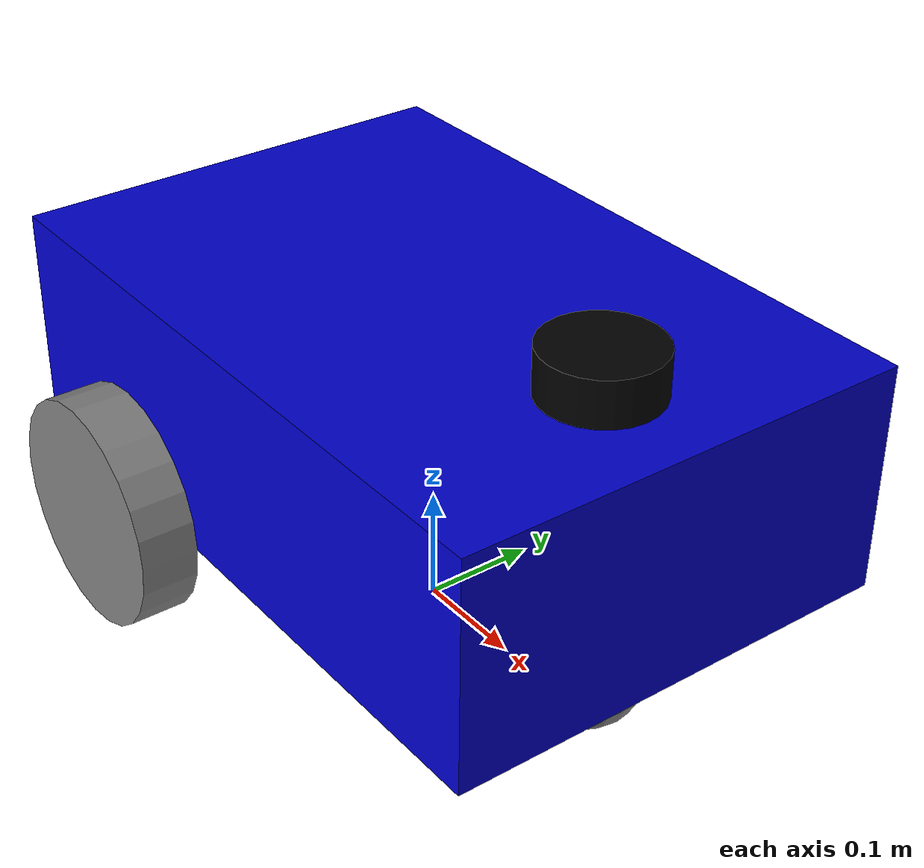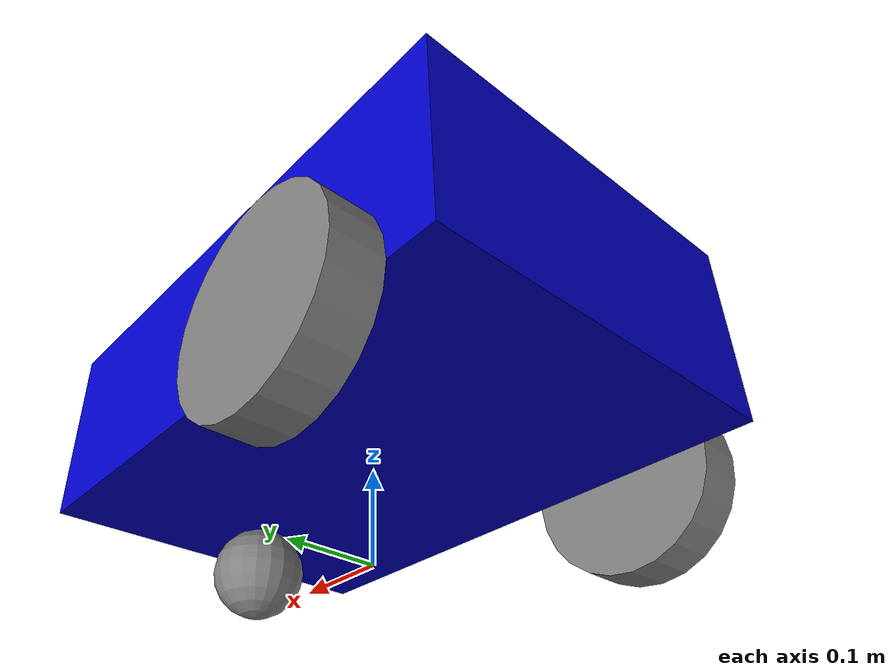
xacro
<?xml version="1.0"?>
<robot name="my_robot" xmlns:xacro="http://www.ros.org/wiki/xacro">

    <xacro:include filename="common_properties.xacro" />
    <xacro:include filename="mobile_base.xacro" />
    <xacro:include filename="mobile_base.ros2_control.xacro" />
    <xacro:include filename="mobile_base.gazebo.xacro" />

</robot>

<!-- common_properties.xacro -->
<robot xmlns:xacro="http://www.ros.org/wiki/xacro">

    <!-- Materials -->
    <material name="blue">
        <color rgba="0 0 0.8 1" />
    </material>
    <material name="grey">
        <color rgba="0.5 0.5 0.5 1" />
    </material>
    <material name="black">
        <color rgba="0 0 0 1" />
    </material>

</robot>

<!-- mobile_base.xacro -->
<robot xmlns:xacro="http://www.ros.org/wiki/xacro" name="diff_drive_robot">

    <!-- Properties -->
    <xacro:property name="base_length" value="0.6" />
    <xacro:property name="base_width" value="0.4" />
    <xacro:property name="base_height" value="0.2" />
    <xacro:property name="base_mass" value="5.0" />

    <xacro:property name="wheel_radius" value="0.1" />
    <xacro:property name="wheel_length" value="0.05" />
    <xacro:property name="wheel_mass" value="0.5" />

    <xacro:property name="caster_radius" value="${wheel_radius / 2.0}" />
    <xacro:property name="caster_mass" value="0.2" />

    <xacro:property name="camera_length" value="0.03" />
    <xacro:property name="camera_width" value="0.08" />
    <xacro:property name="camera_height" value="0.03" />
    <xacro:property name="camera_mass" value="0.05" />

    <!-- Inertia Macros -->
    <xacro:macro name="box_inertia" params="m x y z o_xyz o_rpy">
        <inertial>
            <mass value="${m}" />
            <origin xyz="${o_xyz}" rpy="${o_rpy}" />
            <inertia ixx="${(1/12) * m * (y*y + z*z)}" ixy="0.0" ixz="0.0"
                     iyy="${(1/12) * m * (x*x + z*z)}" iyz="0.0"
                     izz="${(1/12) * m * (x*x + y*y)}" />
        </inertial>
    </xacro:macro>

    <xacro:macro name="cylinder_inertia" params="m r h o_xyz o_rpy">
        <inertial>
            <mass value="${m}" />
            <origin xyz="${o_xyz}" rpy="${o_rpy}" />
            <inertia ixx="${(1/12) * m * (3*r*r + h*h)}" ixy="0.0" ixz="0.0"
                     iyy="${(1/12) * m * (3*r*r + h*h)}" iyz="0.0"
                     izz="${(1/2) * m * r * r}" />
        </inertial>
    </xacro:macro>

    <xacro:macro name="sphere_inertia" params="m r o_xyz o_rpy">
        <inertial>
            <mass value="${m}" />
            <origin xyz="${o_xyz}" rpy="${o_rpy}" />
            <inertia ixx="${(2/5) * m * r * r}" ixy="0.0" ixz="0.0"
                     iyy="${(2/5) * m * r * r}" iyz="0.0"
                     izz="${(2/5) * m * r * r}" />
        </inertial>
    </xacro:macro>

    <!-- Links & Joints -->
    <link name="base_footprint" />

    <joint name="base_joint" type="fixed">
        <parent link="base_footprint" />
        <child link="base_link" />
        <origin xyz="0 0 ${wheel_radius}" rpy="0 0 0"/>
    </joint>

    <link name="base_link">
        <visual>
            <geometry>
                <box size="${base_length} ${base_width} ${base_height}" />
            </geometry>
            <origin xyz="0 0 ${base_height / 2.0}" rpy="0 0 0" />
            <material name="blue" />
        </visual>
        <collision>
            <geometry>
                <box size="${base_length} ${base_width} ${base_height}" />
            </geometry>
            <origin xyz="0 0 ${base_height / 2.0}" rpy="0 0 0" />
        </collision>
        <xacro:box_inertia m="${base_mass}" x="${base_length}" y="${base_width}" z="${base_height}"
                           o_xyz="0 0 ${base_height / 2.0}" o_rpy="0 0 0" />
    </link>

    <!-- Wheel Macro -->
    <xacro:macro name="wheel_link" params="prefix">
        <link name="${prefix}_wheel_link">
            <visual>
                <geometry>
                    <cylinder radius="${wheel_radius}" length="${wheel_length}" />
                </geometry>
                <origin xyz="0 0 0" rpy="${pi / 2.0} 0 0" />
                <material name="grey" />
            </visual>
            <collision>
                <geometry>
                    <cylinder radius="${wheel_radius}" length="${wheel_length}" />
                </geometry>
                <origin xyz="0 0 0" rpy="${pi / 2.0} 0 0" />
            </collision>
            <xacro:cylinder_inertia m="${wheel_mass}" r="${wheel_radius}" h="${wheel_length}"
                                    o_xyz="0 0 0" o_rpy="${pi / 2.0} 0 0" />
        </link>
    </xacro:macro>

    <xacro:wheel_link prefix="right" />
    <xacro:wheel_link prefix="left" />

    <joint name="base_right_wheel_joint" type="continuous">
        <parent link="base_link" />
        <child link="right_wheel_link" />
        <origin xyz="${-base_length / 4.0} ${-(base_width + wheel_length) / 2.0} 0" rpy="0 0 0" />
        <axis xyz="0 1 0" />
    </joint>

    <joint name="base_left_wheel_joint" type="continuous">
        <parent link="base_link" />
        <child link="left_wheel_link" />
        <origin xyz="${-base_length / 4.0} ${(base_width + wheel_length) / 2.0} 0" rpy="0 0 0" />
        <axis xyz="0 1 0" />
    </joint>

    <!-- Caster Wheel -->
    <link name="caster_wheel_link">
        <visual>
            <geometry>
                <sphere radius="${caster_radius}" />
            </geometry>
            <origin xyz="0 0 0" rpy="0 0 0" />
            <material name="grey" />
        </visual>
        <collision>
            <geometry>
                <sphere radius="${caster_radius}" />
            </geometry>
            <origin xyz="0 0 0" rpy="0 0 0" />
        </collision>
        <xacro:sphere_inertia m="${caster_mass}" r="${caster_radius}" o_xyz="0 0 0" o_rpy="0 0 0" />
    </link>

    <joint name="base_caster_wheel_joint" type="fixed">
        <parent link="base_link" />
        <child link="caster_wheel_link" />
        <origin xyz="${base_length / 3.0} 0 ${-caster_radius}" rpy="0 0 0" />
    </joint>

    <!-- Camera Simulator Link & Joint -->

    <!-- Optional Camera Optical Link (Standard ROS convention for point clouds/camera sensors) -->

    <xacro:property name="lidar_radius" value="0.05" />
    <xacro:property name="lidar_length" value="0.04" />
    <xacro:property name="lidar_mass" value="0.1" />

    <link name="laser_frame">
        <visual>
            <geometry>
                <cylinder radius="${lidar_radius}" length="${lidar_length}"/>
            </geometry>
            <origin xyz="0 0 0" rpy="0 0 0"/>
            <material name="black"/>
        </visual>
        <collision>
            <geometry>
                <cylinder radius="${lidar_radius}" length="${lidar_length}"/>
            </geometry>
            <origin xyz="0 0 0" rpy="0 0 0"/>
        </collision>
        <xacro:cylinder_inertia m="${lidar_mass}" r="${lidar_radius}" h="${lidar_length}"
                                o_xyz="0 0 0" o_rpy="0 0 0" />
    </link>

    <joint name="laser_joint" type="fixed">
        <parent link="base_link"/>
        <child link="laser_frame"/>
        <!-- Mounted on the top face of the chassis -->
        <origin xyz="0.2 0.0 ${base_height + lidar_length / 2.0}" rpy="0 0 0"/>
    </joint>

</robot>
